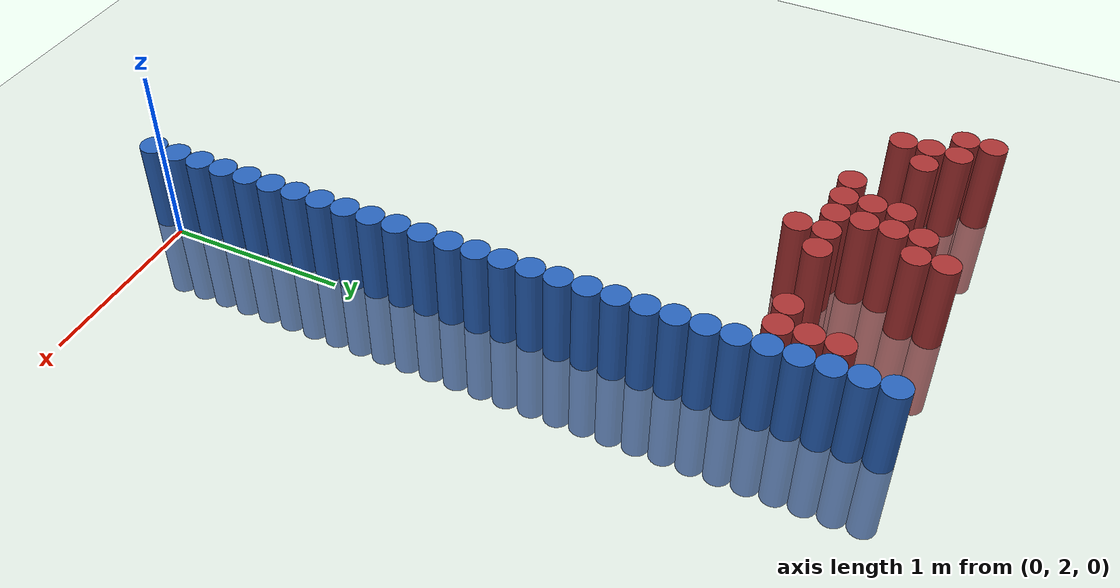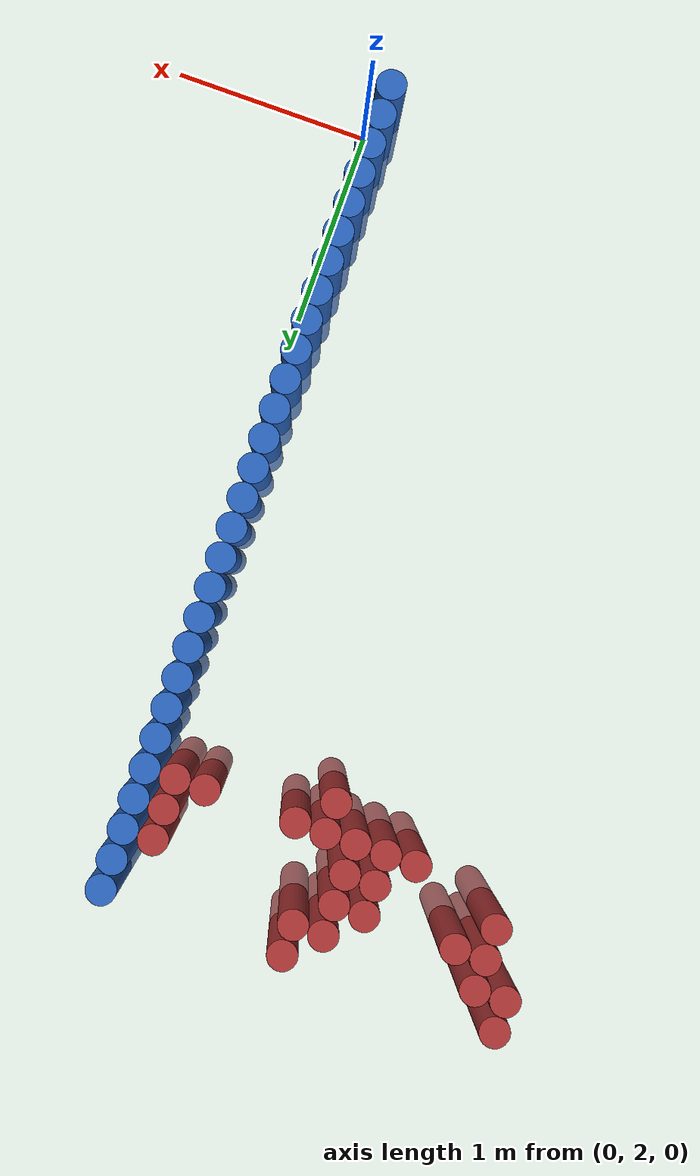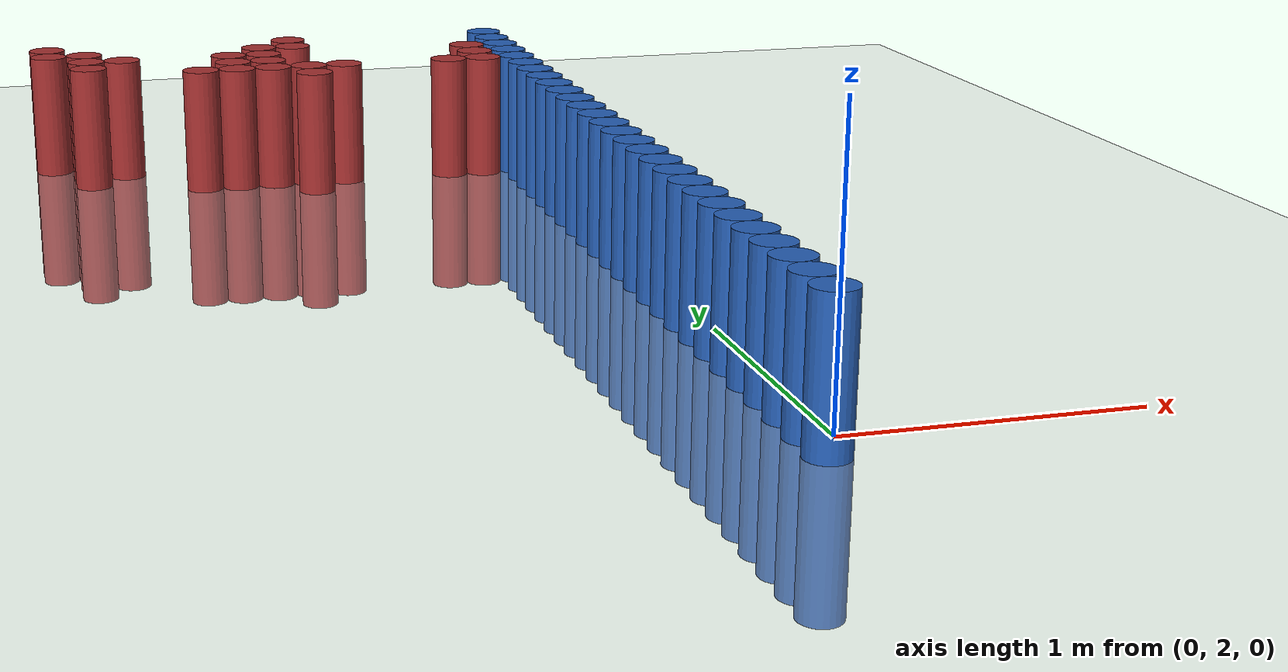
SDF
<sdf version="1.6">
 <world name="default">
  <model name="ground_plane">
   <static>1</static>
   <link name="link">
    <collision name="collision">
     <geometry><plane><normal>0 0 1</normal><size>100 100</size></plane></geometry>
     <surface><friction><ode><mu>100</mu><mu2>50</mu2></ode></friction></surface>
    </collision>
    <visual name="visual">
     <cast_shadows>0</cast_shadows>
     <geometry><plane><normal>0 0 1</normal><size>100 100</size></plane></geometry>
     <material>
      <script><uri>file://media/materials/scripts/gazebo.material</uri><name>Gazebo/Grey</name></script>
     </material>
    </visual>
   </link>
  </model>
  <model name="unit_cylinder_52">
   <static>1</static>
   <pose>-0.075000 1.875000 0.000000 0.000000 0.000000 0.000000</pose>
   <link name="link">
    <inertial>
     <mass>1</mass>
     <inertia><ixx>0.145833</ixx><ixy>0</ixy><ixz>0</ixz><iyy>0.145833</iyy><iyz>0</iyz><izz>0.125</izz></inertia>
    </inertial>
    <collision name="collision">
     <geometry><cylinder><radius>0.075000</radius><length>1</length></cylinder></geometry>
    </collision>
    <visual name="visual">
     <geometry><cylinder><radius>0.075000</radius><length>1</length></cylinder></geometry>
     <material>
      <ambient>0.152000 0.379000 0.720000 1</ambient>
      <diffuse>0.152000 0.379000 0.720000 1</diffuse>
     </material>
     <material>
      <script><name>Gazebo/Grey</name><uri>file://media/materials/scripts/gazebo.material</uri></script>
     </material>
    </visual>
   </link>
  </model>
  <model name="unit_cylinder_54">
   <static>1</static>
   <pose>-0.075000 2.025000 0.000000 0.000000 0.000000 0.000000</pose>
   <link name="link">
    <inertial>
     <mass>1</mass>
     <inertia><ixx>0.145833</ixx><ixy>0</ixy><ixz>0</ixz><iyy>0.145833</iyy><iyz>0</iyz><izz>0.125</izz></inertia>
    </inertial>
    <collision name="collision">
     <geometry><cylinder><radius>0.075000</radius><length>1</length></cylinder></geometry>
    </collision>
    <visual name="visual">
     <geometry><cylinder><radius>0.075000</radius><length>1</length></cylinder></geometry>
     <material>
      <ambient>0.152000 0.379000 0.720000 1</ambient>
      <diffuse>0.152000 0.379000 0.720000 1</diffuse>
     </material>
     <material>
      <script><name>Gazebo/Grey</name><uri>file://media/materials/scripts/gazebo.material</uri></script>
     </material>
    </visual>
   </link>
  </model>
  <model name="unit_cylinder_56">
   <static>1</static>
   <pose>-0.075000 2.175000 0.000000 0.000000 0.000000 0.000000</pose>
   <link name="link">
    <inertial>
     <mass>1</mass>
     <inertia><ixx>0.145833</ixx><ixy>0</ixy><ixz>0</ixz><iyy>0.145833</iyy><iyz>0</iyz><izz>0.125</izz></inertia>
    </inertial>
    <collision name="collision">
     <geometry><cylinder><radius>0.075000</radius><length>1</length></cylinder></geometry>
    </collision>
    <visual name="visual">
     <geometry><cylinder><radius>0.075000</radius><length>1</length></cylinder></geometry>
     <material>
      <ambient>0.152000 0.379000 0.720000 1</ambient>
      <diffuse>0.152000 0.379000 0.720000 1</diffuse>
     </material>
     <material>
      <script><name>Gazebo/Grey</name><uri>file://media/materials/scripts/gazebo.material</uri></script>
     </material>
    </visual>
   </link>
  </model>
  <model name="unit_cylinder_58">
   <static>1</static>
   <pose>-0.075000 2.325000 0.000000 0.000000 0.000000 0.000000</pose>
   <link name="link">
    <inertial>
     <mass>1</mass>
     <inertia><ixx>0.145833</ixx><ixy>0</ixy><ixz>0</ixz><iyy>0.145833</iyy><iyz>0</iyz><izz>0.125</izz></inertia>
    </inertial>
    <collision name="collision">
     <geometry><cylinder><radius>0.075000</radius><length>1</length></cylinder></geometry>
    </collision>
    <visual name="visual">
     <geometry><cylinder><radius>0.075000</radius><length>1</length></cylinder></geometry>
     <material>
      <ambient>0.152000 0.379000 0.720000 1</ambient>
      <diffuse>0.152000 0.379000 0.720000 1</diffuse>
     </material>
     <material>
      <script><name>Gazebo/Grey</name><uri>file://media/materials/scripts/gazebo.material</uri></script>
     </material>
    </visual>
   </link>
  </model>
  <model name="unit_cylinder_60">
   <static>1</static>
   <pose>-0.075000 2.475000 0.000000 0.000000 0.000000 0.000000</pose>
   <link name="link">
    <inertial>
     <mass>1</mass>
     <inertia><ixx>0.145833</ixx><ixy>0</ixy><ixz>0</ixz><iyy>0.145833</iyy><iyz>0</iyz><izz>0.125</izz></inertia>
    </inertial>
    <collision name="collision">
     <geometry><cylinder><radius>0.075000</radius><length>1</length></cylinder></geometry>
    </collision>
    <visual name="visual">
     <geometry><cylinder><radius>0.075000</radius><length>1</length></cylinder></geometry>
     <material>
      <ambient>0.152000 0.379000 0.720000 1</ambient>
      <diffuse>0.152000 0.379000 0.720000 1</diffuse>
     </material>
     <material>
      <script><name>Gazebo/Grey</name><uri>file://media/materials/scripts/gazebo.material</uri></script>
     </material>
    </visual>
   </link>
  </model>
  <model name="unit_cylinder_62">
   <static>1</static>
   <pose>-0.075000 2.625000 0.000000 0.000000 0.000000 0.000000</pose>
   <link name="link">
    <inertial>
     <mass>1</mass>
     <inertia><ixx>0.145833</ixx><ixy>0</ixy><ixz>0</ixz><iyy>0.145833</iyy><iyz>0</iyz><izz>0.125</izz></inertia>
    </inertial>
    <collision name="collision">
     <geometry><cylinder><radius>0.075000</radius><length>1</length></cylinder></geometry>
    </collision>
    <visual name="visual">
     <geometry><cylinder><radius>0.075000</radius><length>1</length></cylinder></geometry>
     <material>
      <ambient>0.152000 0.379000 0.720000 1</ambient>
      <diffuse>0.152000 0.379000 0.720000 1</diffuse>
     </material>
     <material>
      <script><name>Gazebo/Grey</name><uri>file://media/materials/scripts/gazebo.material</uri></script>
     </material>
    </visual>
   </link>
  </model>
  <model name="unit_cylinder_64">
   <static>1</static>
   <pose>-0.075000 2.775000 0.000000 0.000000 0.000000 0.000000</pose>
   <link name="link">
    <inertial>
     <mass>1</mass>
     <inertia><ixx>0.145833</ixx><ixy>0</ixy><ixz>0</ixz><iyy>0.145833</iyy><iyz>0</iyz><izz>0.125</izz></inertia>
    </inertial>
    <collision name="collision">
     <geometry><cylinder><radius>0.075000</radius><length>1</length></cylinder></geometry>
    </collision>
    <visual name="visual">
     <geometry><cylinder><radius>0.075000</radius><length>1</length></cylinder></geometry>
     <material>
      <ambient>0.152000 0.379000 0.720000 1</ambient>
      <diffuse>0.152000 0.379000 0.720000 1</diffuse>
     </material>
     <material>
      <script><name>Gazebo/Grey</name><uri>file://media/materials/scripts/gazebo.material</uri></script>
     </material>
    </visual>
   </link>
  </model>
  <model name="unit_cylinder_66">
   <static>1</static>
   <pose>-0.075000 2.925000 0.000000 0.000000 0.000000 0.000000</pose>
   <link name="link">
    <inertial>
     <mass>1</mass>
     <inertia><ixx>0.145833</ixx><ixy>0</ixy><ixz>0</ixz><iyy>0.145833</iyy><iyz>0</iyz><izz>0.125</izz></inertia>
    </inertial>
    <collision name="collision">
     <geometry><cylinder><radius>0.075000</radius><length>1</length></cylinder></geometry>
    </collision>
    <visual name="visual">
     <geometry><cylinder><radius>0.075000</radius><length>1</length></cylinder></geometry>
     <material>
      <ambient>0.152000 0.379000 0.720000 1</ambient>
      <diffuse>0.152000 0.379000 0.720000 1</diffuse>
     </material>
     <material>
      <script><name>Gazebo/Grey</name><uri>file://media/materials/scripts/gazebo.material</uri></script>
     </material>
    </visual>
   </link>
  </model>
  <model name="unit_cylinder_68">
   <static>1</static>
   <pose>-0.075000 3.075000 0.000000 0.000000 0.000000 0.000000</pose>
   <link name="link">
    <inertial>
     <mass>1</mass>
     <inertia><ixx>0.145833</ixx><ixy>0</ixy><ixz>0</ixz><iyy>0.145833</iyy><iyz>0</iyz><izz>0.125</izz></inertia>
    </inertial>
    <collision name="collision">
     <geometry><cylinder><radius>0.075000</radius><length>1</length></cylinder></geometry>
    </collision>
    <visual name="visual">
     <geometry><cylinder><radius>0.075000</radius><length>1</length></cylinder></geometry>
     <material>
      <ambient>0.152000 0.379000 0.720000 1</ambient>
      <diffuse>0.152000 0.379000 0.720000 1</diffuse>
     </material>
     <material>
      <script><name>Gazebo/Grey</name><uri>file://media/materials/scripts/gazebo.material</uri></script>
     </material>
    </visual>
   </link>
  </model>
  <model name="unit_cylinder_70">
   <static>1</static>
   <pose>-0.075000 3.225000 0.000000 0.000000 0.000000 0.000000</pose>
   <link name="link">
    <inertial>
     <mass>1</mass>
     <inertia><ixx>0.145833</ixx><ixy>0</ixy><ixz>0</ixz><iyy>0.145833</iyy><iyz>0</iyz><izz>0.125</izz></inertia>
    </inertial>
    <collision name="collision">
     <geometry><cylinder><radius>0.075000</radius><length>1</length></cylinder></geometry>
    </collision>
    <visual name="visual">
     <geometry><cylinder><radius>0.075000</radius><length>1</length></cylinder></geometry>
     <material>
      <ambient>0.152000 0.379000 0.720000 1</ambient>
      <diffuse>0.152000 0.379000 0.720000 1</diffuse>
     </material>
     <material>
      <script><name>Gazebo/Grey</name><uri>file://media/materials/scripts/gazebo.material</uri></script>
     </material>
    </visual>
   </link>
  </model>
  <model name="unit_cylinder_72">
   <static>1</static>
   <pose>-0.075000 3.375000 0.000000 0.000000 0.000000 0.000000</pose>
   <link name="link">
    <inertial>
     <mass>1</mass>
     <inertia><ixx>0.145833</ixx><ixy>0</ixy><ixz>0</ixz><iyy>0.145833</iyy><iyz>0</iyz><izz>0.125</izz></inertia>
    </inertial>
    <collision name="collision">
     <geometry><cylinder><radius>0.075000</radius><length>1</length></cylinder></geometry>
    </collision>
    <visual name="visual">
     <geometry><cylinder><radius>0.075000</radius><length>1</length></cylinder></geometry>
     <material>
      <ambient>0.152000 0.379000 0.720000 1</ambient>
      <diffuse>0.152000 0.379000 0.720000 1</diffuse>
     </material>
     <material>
      <script><name>Gazebo/Grey</name><uri>file://media/materials/scripts/gazebo.material</uri></script>
     </material>
    </visual>
   </link>
  </model>
  <model name="unit_cylinder_74">
   <static>1</static>
   <pose>-0.075000 3.525000 0.000000 0.000000 0.000000 0.000000</pose>
   <link name="link">
    <inertial>
     <mass>1</mass>
     <inertia><ixx>0.145833</ixx><ixy>0</ixy><ixz>0</ixz><iyy>0.145833</iyy><iyz>0</iyz><izz>0.125</izz></inertia>
    </inertial>
    <collision name="collision">
     <geometry><cylinder><radius>0.075000</radius><length>1</length></cylinder></geometry>
    </collision>
    <visual name="visual">
     <geometry><cylinder><radius>0.075000</radius><length>1</length></cylinder></geometry>
     <material>
      <ambient>0.152000 0.379000 0.720000 1</ambient>
      <diffuse>0.152000 0.379000 0.720000 1</diffuse>
     </material>
     <material>
      <script><name>Gazebo/Grey</name><uri>file://media/materials/scripts/gazebo.material</uri></script>
     </material>
    </visual>
   </link>
  </model>
  <model name="unit_cylinder_76">
   <static>1</static>
   <pose>-0.075000 3.675000 0.000000 0.000000 0.000000 0.000000</pose>
   <link name="link">
    <inertial>
     <mass>1</mass>
     <inertia><ixx>0.145833</ixx><ixy>0</ixy><ixz>0</ixz><iyy>0.145833</iyy><iyz>0</iyz><izz>0.125</izz></inertia>
    </inertial>
    <collision name="collision">
     <geometry><cylinder><radius>0.075000</radius><length>1</length></cylinder></geometry>
    </collision>
    <visual name="visual">
     <geometry><cylinder><radius>0.075000</radius><length>1</length></cylinder></geometry>
     <material>
      <ambient>0.152000 0.379000 0.720000 1</ambient>
      <diffuse>0.152000 0.379000 0.720000 1</diffuse>
     </material>
     <material>
      <script><name>Gazebo/Grey</name><uri>file://media/materials/scripts/gazebo.material</uri></script>
     </material>
    </visual>
   </link>
  </model>
  <model name="unit_cylinder_78">
   <static>1</static>
   <pose>-0.075000 3.825000 0.000000 0.000000 0.000000 0.000000</pose>
   <link name="link">
    <inertial>
     <mass>1</mass>
     <inertia><ixx>0.145833</ixx><ixy>0</ixy><ixz>0</ixz><iyy>0.145833</iyy><iyz>0</iyz><izz>0.125</izz></inertia>
    </inertial>
    <collision name="collision">
     <geometry><cylinder><radius>0.075000</radius><length>1</length></cylinder></geometry>
    </collision>
    <visual name="visual">
     <geometry><cylinder><radius>0.075000</radius><length>1</length></cylinder></geometry>
     <material>
      <ambient>0.152000 0.379000 0.720000 1</ambient>
      <diffuse>0.152000 0.379000 0.720000 1</diffuse>
     </material>
     <material>
      <script><name>Gazebo/Grey</name><uri>file://media/materials/scripts/gazebo.material</uri></script>
     </material>
    </visual>
   </link>
  </model>
  <model name="unit_cylinder_80">
   <static>1</static>
   <pose>-0.075000 3.975000 0.000000 0.000000 0.000000 0.000000</pose>
   <link name="link">
    <inertial>
     <mass>1</mass>
     <inertia><ixx>0.145833</ixx><ixy>0</ixy><ixz>0</ixz><iyy>0.145833</iyy><iyz>0</iyz><izz>0.125</izz></inertia>
    </inertial>
    <collision name="collision">
     <geometry><cylinder><radius>0.075000</radius><length>1</length></cylinder></geometry>
    </collision>
    <visual name="visual">
     <geometry><cylinder><radius>0.075000</radius><length>1</length></cylinder></geometry>
     <material>
      <ambient>0.152000 0.379000 0.720000 1</ambient>
      <diffuse>0.152000 0.379000 0.720000 1</diffuse>
     </material>
     <material>
      <script><name>Gazebo/Grey</name><uri>file://media/materials/scripts/gazebo.material</uri></script>
     </material>
    </visual>
   </link>
  </model>
  <model name="unit_cylinder_82">
   <static>1</static>
   <pose>-0.075000 4.125000 0.000000 0.000000 0.000000 0.000000</pose>
   <link name="link">
    <inertial>
     <mass>1</mass>
     <inertia><ixx>0.145833</ixx><ixy>0</ixy><ixz>0</ixz><iyy>0.145833</iyy><iyz>0</iyz><izz>0.125</izz></inertia>
    </inertial>
    <collision name="collision">
     <geometry><cylinder><radius>0.075000</radius><length>1</length></cylinder></geometry>
    </collision>
    <visual name="visual">
     <geometry><cylinder><radius>0.075000</radius><length>1</length></cylinder></geometry>
     <material>
      <ambient>0.152000 0.379000 0.720000 1</ambient>
      <diffuse>0.152000 0.379000 0.720000 1</diffuse>
     </material>
     <material>
      <script><name>Gazebo/Grey</name><uri>file://media/materials/scripts/gazebo.material</uri></script>
     </material>
    </visual>
   </link>
  </model>
  <model name="unit_cylinder_84">
   <static>1</static>
   <pose>-0.075000 4.275000 0.000000 0.000000 0.000000 0.000000</pose>
   <link name="link">
    <inertial>
     <mass>1</mass>
     <inertia><ixx>0.145833</ixx><ixy>0</ixy><ixz>0</ixz><iyy>0.145833</iyy><iyz>0</iyz><izz>0.125</izz></inertia>
    </inertial>
    <collision name="collision">
     <geometry><cylinder><radius>0.075000</radius><length>1</length></cylinder></geometry>
    </collision>
    <visual name="visual">
     <geometry><cylinder><radius>0.075000</radius><length>1</length></cylinder></geometry>
     <material>
      <ambient>0.152000 0.379000 0.720000 1</ambient>
      <diffuse>0.152000 0.379000 0.720000 1</diffuse>
     </material>
     <material>
      <script><name>Gazebo/Grey</name><uri>file://media/materials/scripts/gazebo.material</uri></script>
     </material>
    </visual>
   </link>
  </model>
  <model name="unit_cylinder_86">
   <static>1</static>
   <pose>-0.075000 4.425000 0.000000 0.000000 0.000000 0.000000</pose>
   <link name="link">
    <inertial>
     <mass>1</mass>
     <inertia><ixx>0.145833</ixx><ixy>0</ixy><ixz>0</ixz><iyy>0.145833</iyy><iyz>0</iyz><izz>0.125</izz></inertia>
    </inertial>
    <collision name="collision">
     <geometry><cylinder><radius>0.075000</radius><length>1</length></cylinder></geometry>
    </collision>
    <visual name="visual">
     <geometry><cylinder><radius>0.075000</radius><length>1</length></cylinder></geometry>
     <material>
      <ambient>0.152000 0.379000 0.720000 1</ambient>
      <diffuse>0.152000 0.379000 0.720000 1</diffuse>
     </material>
     <material>
      <script><name>Gazebo/Grey</name><uri>file://media/materials/scripts/gazebo.material</uri></script>
     </material>
    </visual>
   </link>
  </model>
  <model name="unit_cylinder_88">
   <static>1</static>
   <pose>-0.075000 4.575000 0.000000 0.000000 0.000000 0.000000</pose>
   <link name="link">
    <inertial>
     <mass>1</mass>
     <inertia><ixx>0.145833</ixx><ixy>0</ixy><ixz>0</ixz><iyy>0.145833</iyy><iyz>0</iyz><izz>0.125</izz></inertia>
    </inertial>
    <collision name="collision">
     <geometry><cylinder><radius>0.075000</radius><length>1</length></cylinder></geometry>
    </collision>
    <visual name="visual">
     <geometry><cylinder><radius>0.075000</radius><length>1</length></cylinder></geometry>
     <material>
      <ambient>0.152000 0.379000 0.720000 1</ambient>
      <diffuse>0.152000 0.379000 0.720000 1</diffuse>
     </material>
     <material>
      <script><name>Gazebo/Grey</name><uri>file://media/materials/scripts/gazebo.material</uri></script>
     </material>
    </visual>
   </link>
  </model>
  <model name="unit_cylinder_90">
   <static>1</static>
   <pose>-0.075000 4.725000 0.000000 0.000000 0.000000 0.000000</pose>
   <link name="link">
    <inertial>
     <mass>1</mass>
     <inertia><ixx>0.145833</ixx><ixy>0</ixy><ixz>0</ixz><iyy>0.145833</iyy><iyz>0</iyz><izz>0.125</izz></inertia>
    </inertial>
    <collision name="collision">
     <geometry><cylinder><radius>0.075000</radius><length>1</length></cylinder></geometry>
    </collision>
    <visual name="visual">
     <geometry><cylinder><radius>0.075000</radius><length>1</length></cylinder></geometry>
     <material>
      <ambient>0.152000 0.379000 0.720000 1</ambient>
      <diffuse>0.152000 0.379000 0.720000 1</diffuse>
     </material>
     <material>
      <script><name>Gazebo/Grey</name><uri>file://media/materials/scripts/gazebo.material</uri></script>
     </material>
    </visual>
   </link>
  </model>
  <model name="unit_cylinder_92">
   <static>1</static>
   <pose>-0.075000 4.875000 0.000000 0.000000 0.000000 0.000000</pose>
   <link name="link">
    <inertial>
     <mass>1</mass>
     <inertia><ixx>0.145833</ixx><ixy>0</ixy><ixz>0</ixz><iyy>0.145833</iyy><iyz>0</iyz><izz>0.125</izz></inertia>
    </inertial>
    <collision name="collision">
     <geometry><cylinder><radius>0.075000</radius><length>1</length></cylinder></geometry>
    </collision>
    <visual name="visual">
     <geometry><cylinder><radius>0.075000</radius><length>1</length></cylinder></geometry>
     <material>
      <ambient>0.152000 0.379000 0.720000 1</ambient>
      <diffuse>0.152000 0.379000 0.720000 1</diffuse>
     </material>
     <material>
      <script><name>Gazebo/Grey</name><uri>file://media/materials/scripts/gazebo.material</uri></script>
     </material>
    </visual>
   </link>
  </model>
  <model name="unit_cylinder_94">
   <static>1</static>
   <pose>-0.075000 5.025000 0.000000 0.000000 0.000000 0.000000</pose>
   <link name="link">
    <inertial>
     <mass>1</mass>
     <inertia><ixx>0.145833</ixx><ixy>0</ixy><ixz>0</ixz><iyy>0.145833</iyy><iyz>0</iyz><izz>0.125</izz></inertia>
    </inertial>
    <collision name="collision">
     <geometry><cylinder><radius>0.075000</radius><length>1</length></cylinder></geometry>
    </collision>
    <visual name="visual">
     <geometry><cylinder><radius>0.075000</radius><length>1</length></cylinder></geometry>
     <material>
      <ambient>0.152000 0.379000 0.720000 1</ambient>
      <diffuse>0.152000 0.379000 0.720000 1</diffuse>
     </material>
     <material>
      <script><name>Gazebo/Grey</name><uri>file://media/materials/scripts/gazebo.material</uri></script>
     </material>
    </visual>
   </link>
  </model>
  <model name="unit_cylinder_207">
   <static>1</static>
   <pose>-2.025000 5.775000 0.000000 0.000000 0.000000 0.000000</pose>
   <link name="link">
    <inertial>
     <mass>1</mass>
     <inertia><ixx>0.145833</ixx><ixy>0</ixy><ixz>0</ixz><iyy>0.145833</iyy><iyz>0</iyz><izz>0.125</izz></inertia>
    </inertial>
    <collision name="collision">
     <geometry><cylinder><radius>0.075000</radius><length>1</length></cylinder></geometry>
    </collision>
    <visual name="visual">
     <geometry><cylinder><radius>0.075000</radius><length>1</length></cylinder></geometry>
     <material>
      <ambient>0.648000 0.192000 0.192000 1</ambient>
      <diffuse>0.648000 0.192000 0.192000 1</diffuse>
     </material>
     <material>
      <script><name>Gazebo/Grey</name><uri>file://media/materials/scripts/gazebo.material</uri></script>
     </material>
    </visual>
   </link>
  </model>
  <model name="unit_cylinder_208">
   <static>1</static>
   <pose>-2.025000 5.925000 0.000000 0.000000 0.000000 0.000000</pose>
   <link name="link">
    <inertial>
     <mass>1</mass>
     <inertia><ixx>0.145833</ixx><ixy>0</ixy><ixz>0</ixz><iyy>0.145833</iyy><iyz>0</iyz><izz>0.125</izz></inertia>
    </inertial>
    <collision name="collision">
     <geometry><cylinder><radius>0.075000</radius><length>1</length></cylinder></geometry>
    </collision>
    <visual name="visual">
     <geometry><cylinder><radius>0.075000</radius><length>1</length></cylinder></geometry>
     <material>
      <ambient>0.648000 0.192000 0.192000 1</ambient>
      <diffuse>0.648000 0.192000 0.192000 1</diffuse>
     </material>
     <material>
      <script><name>Gazebo/Grey</name><uri>file://media/materials/scripts/gazebo.material</uri></script>
     </material>
    </visual>
   </link>
  </model>
  <model name="unit_cylinder_217">
   <static>1</static>
   <pose>-1.875000 5.475000 0.000000 0.000000 0.000000 0.000000</pose>
   <link name="link">
    <inertial>
     <mass>1</mass>
     <inertia><ixx>0.145833</ixx><ixy>0</ixy><ixz>0</ixz><iyy>0.145833</iyy><iyz>0</iyz><izz>0.125</izz></inertia>
    </inertial>
    <collision name="collision">
     <geometry><cylinder><radius>0.075000</radius><length>1</length></cylinder></geometry>
    </collision>
    <visual name="visual">
     <geometry><cylinder><radius>0.075000</radius><length>1</length></cylinder></geometry>
     <material>
      <ambient>0.648000 0.192000 0.192000 1</ambient>
      <diffuse>0.648000 0.192000 0.192000 1</diffuse>
     </material>
     <material>
      <script><name>Gazebo/Grey</name><uri>file://media/materials/scripts/gazebo.material</uri></script>
     </material>
    </visual>
   </link>
  </model>
  <model name="unit_cylinder_218">
   <static>1</static>
   <pose>-1.875000 5.625000 0.000000 0.000000 0.000000 0.000000</pose>
   <link name="link">
    <inertial>
     <mass>1</mass>
     <inertia><ixx>0.145833</ixx><ixy>0</ixy><ixz>0</ixz><iyy>0.145833</iyy><iyz>0</iyz><izz>0.125</izz></inertia>
    </inertial>
    <collision name="collision">
     <geometry><cylinder><radius>0.075000</radius><length>1</length></cylinder></geometry>
    </collision>
    <visual name="visual">
     <geometry><cylinder><radius>0.075000</radius><length>1</length></cylinder></geometry>
     <material>
      <ambient>0.648000 0.192000 0.192000 1</ambient>
      <diffuse>0.648000 0.192000 0.192000 1</diffuse>
     </material>
     <material>
      <script><name>Gazebo/Grey</name><uri>file://media/materials/scripts/gazebo.material</uri></script>
     </material>
    </visual>
   </link>
  </model>
  <model name="unit_cylinder_219">
   <static>1</static>
   <pose>-1.875000 5.775000 0.000000 0.000000 0.000000 0.000000</pose>
   <link name="link">
    <inertial>
     <mass>1</mass>
     <inertia><ixx>0.145833</ixx><ixy>0</ixy><ixz>0</ixz><iyy>0.145833</iyy><iyz>0</iyz><izz>0.125</izz></inertia>
    </inertial>
    <collision name="collision">
     <geometry><cylinder><radius>0.075000</radius><length>1</length></cylinder></geometry>
    </collision>
    <visual name="visual">
     <geometry><cylinder><radius>0.075000</radius><length>1</length></cylinder></geometry>
     <material>
      <ambient>0.648000 0.192000 0.192000 1</ambient>
      <diffuse>0.648000 0.192000 0.192000 1</diffuse>
     </material>
     <material>
      <script><name>Gazebo/Grey</name><uri>file://media/materials/scripts/gazebo.material</uri></script>
     </material>
    </visual>
   </link>
  </model>
  <model name="unit_cylinder_224">
   <static>1</static>
   <pose>-1.725000 5.625000 0.000000 0.000000 0.000000 0.000000</pose>
   <link name="link">
    <inertial>
     <mass>1</mass>
     <inertia><ixx>0.145833</ixx><ixy>0</ixy><ixz>0</ixz><iyy>0.145833</iyy><iyz>0</iyz><izz>0.125</izz></inertia>
    </inertial>
    <collision name="collision">
     <geometry><cylinder><radius>0.075000</radius><length>1</length></cylinder></geometry>
    </collision>
    <visual name="visual">
     <geometry><cylinder><radius>0.075000</radius><length>1</length></cylinder></geometry>
     <material>
      <ambient>0.648000 0.192000 0.192000 1</ambient>
      <diffuse>0.648000 0.192000 0.192000 1</diffuse>
     </material>
     <material>
      <script><name>Gazebo/Grey</name><uri>file://media/materials/scripts/gazebo.material</uri></script>
     </material>
    </visual>
   </link>
  </model>
  <model name="unit_cylinder_235">
   <static>1</static>
   <pose>-1.425000 5.325000 0.000000 0.000000 0.000000 0.000000</pose>
   <link name="link">
    <inertial>
     <mass>1</mass>
     <inertia><ixx>0.145833</ixx><ixy>0</ixy><ixz>0</ixz><iyy>0.145833</iyy><iyz>0</iyz><izz>0.125</izz></inertia>
    </inertial>
    <collision name="collision">
     <geometry><cylinder><radius>0.075000</radius><length>1</length></cylinder></geometry>
    </collision>
    <visual name="visual">
     <geometry><cylinder><radius>0.075000</radius><length>1</length></cylinder></geometry>
     <material>
      <ambient>0.648000 0.192000 0.192000 1</ambient>
      <diffuse>0.648000 0.192000 0.192000 1</diffuse>
     </material>
     <material>
      <script><name>Gazebo/Grey</name><uri>file://media/materials/scripts/gazebo.material</uri></script>
     </material>
    </visual>
   </link>
  </model>
  <model name="unit_cylinder_242">
   <static>1</static>
   <pose>-1.275000 5.325000 0.000000 0.000000 0.000000 0.000000</pose>
   <link name="link">
    <inertial>
     <mass>1</mass>
     <inertia><ixx>0.145833</ixx><ixy>0</ixy><ixz>0</ixz><iyy>0.145833</iyy><iyz>0</iyz><izz>0.125</izz></inertia>
    </inertial>
    <collision name="collision">
     <geometry><cylinder><radius>0.075000</radius><length>1</length></cylinder></geometry>
    </collision>
    <visual name="visual">
     <geometry><cylinder><radius>0.075000</radius><length>1</length></cylinder></geometry>
     <material>
      <ambient>0.648000 0.192000 0.192000 1</ambient>
      <diffuse>0.648000 0.192000 0.192000 1</diffuse>
     </material>
     <material>
      <script><name>Gazebo/Grey</name><uri>file://media/materials/scripts/gazebo.material</uri></script>
     </material>
    </visual>
   </link>
  </model>
  <model name="unit_cylinder_243">
   <static>1</static>
   <pose>-1.275000 5.475000 0.000000 0.000000 0.000000 0.000000</pose>
   <link name="link">
    <inertial>
     <mass>1</mass>
     <inertia><ixx>0.145833</ixx><ixy>0</ixy><ixz>0</ixz><iyy>0.145833</iyy><iyz>0</iyz><izz>0.125</izz></inertia>
    </inertial>
    <collision name="collision">
     <geometry><cylinder><radius>0.075000</radius><length>1</length></cylinder></geometry>
    </collision>
    <visual name="visual">
     <geometry><cylinder><radius>0.075000</radius><length>1</length></cylinder></geometry>
     <material>
      <ambient>0.648000 0.192000 0.192000 1</ambient>
      <diffuse>0.648000 0.192000 0.192000 1</diffuse>
     </material>
     <material>
      <script><name>Gazebo/Grey</name><uri>file://media/materials/scripts/gazebo.material</uri></script>
     </material>
    </visual>
   </link>
  </model>
  <model name="unit_cylinder_244">
   <static>1</static>
   <pose>-1.275000 5.625000 0.000000 0.000000 0.000000 0.000000</pose>
   <link name="link">
    <inertial>
     <mass>1</mass>
     <inertia><ixx>0.145833</ixx><ixy>0</ixy><ixz>0</ixz><iyy>0.145833</iyy><iyz>0</iyz><izz>0.125</izz></inertia>
    </inertial>
    <collision name="collision">
     <geometry><cylinder><radius>0.075000</radius><length>1</length></cylinder></geometry>
    </collision>
    <visual name="visual">
     <geometry><cylinder><radius>0.075000</radius><length>1</length></cylinder></geometry>
     <material>
      <ambient>0.648000 0.192000 0.192000 1</ambient>
      <diffuse>0.648000 0.192000 0.192000 1</diffuse>
     </material>
     <material>
      <script><name>Gazebo/Grey</name><uri>file://media/materials/scripts/gazebo.material</uri></script>
     </material>
    </visual>
   </link>
  </model>
  <model name="unit_cylinder_253">
   <static>1</static>
   <pose>-1.125000 5.325000 0.000000 0.000000 0.000000 0.000000</pose>
   <link name="link">
    <inertial>
     <mass>1</mass>
     <inertia><ixx>0.145833</ixx><ixy>0</ixy><ixz>0</ixz><iyy>0.145833</iyy><iyz>0</iyz><izz>0.125</izz></inertia>
    </inertial>
    <collision name="collision">
     <geometry><cylinder><radius>0.075000</radius><length>1</length></cylinder></geometry>
    </collision>
    <visual name="visual">
     <geometry><cylinder><radius>0.075000</radius><length>1</length></cylinder></geometry>
     <material>
      <ambient>0.648000 0.192000 0.192000 1</ambient>
      <diffuse>0.648000 0.192000 0.192000 1</diffuse>
     </material>
     <material>
      <script><name>Gazebo/Grey</name><uri>file://media/materials/scripts/gazebo.material</uri></script>
     </material>
    </visual>
   </link>
  </model>
  <model name="unit_cylinder_254">
   <static>1</static>
   <pose>-1.125000 5.475000 0.000000 0.000000 0.000000 0.000000</pose>
   <link name="link">
    <inertial>
     <mass>1</mass>
     <inertia><ixx>0.145833</ixx><ixy>0</ixy><ixz>0</ixz><iyy>0.145833</iyy><iyz>0</iyz><izz>0.125</izz></inertia>
    </inertial>
    <collision name="collision">
     <geometry><cylinder><radius>0.075000</radius><length>1</length></cylinder></geometry>
    </collision>
    <visual name="visual">
     <geometry><cylinder><radius>0.075000</radius><length>1</length></cylinder></geometry>
     <material>
      <ambient>0.648000 0.192000 0.192000 1</ambient>
      <diffuse>0.648000 0.192000 0.192000 1</diffuse>
     </material>
     <material>
      <script><name>Gazebo/Grey</name><uri>file://media/materials/scripts/gazebo.material</uri></script>
     </material>
    </visual>
   </link>
  </model>
  <model name="unit_cylinder_255">
   <static>1</static>
   <pose>-1.125000 5.625000 0.000000 0.000000 0.000000 0.000000</pose>
   <link name="link">
    <inertial>
     <mass>1</mass>
     <inertia><ixx>0.145833</ixx><ixy>0</ixy><ixz>0</ixz><iyy>0.145833</iyy><iyz>0</iyz><izz>0.125</izz></inertia>
    </inertial>
    <collision name="collision">
     <geometry><cylinder><radius>0.075000</radius><length>1</length></cylinder></geometry>
    </collision>
    <visual name="visual">
     <geometry><cylinder><radius>0.075000</radius><length>1</length></cylinder></geometry>
     <material>
      <ambient>0.648000 0.192000 0.192000 1</ambient>
      <diffuse>0.648000 0.192000 0.192000 1</diffuse>
     </material>
     <material>
      <script><name>Gazebo/Grey</name><uri>file://media/materials/scripts/gazebo.material</uri></script>
     </material>
    </visual>
   </link>
  </model>
  <model name="unit_cylinder_256">
   <static>1</static>
   <pose>-1.125000 5.775000 0.000000 0.000000 0.000000 0.000000</pose>
   <link name="link">
    <inertial>
     <mass>1</mass>
     <inertia><ixx>0.145833</ixx><ixy>0</ixy><ixz>0</ixz><iyy>0.145833</iyy><iyz>0</iyz><izz>0.125</izz></inertia>
    </inertial>
    <collision name="collision">
     <geometry><cylinder><radius>0.075000</radius><length>1</length></cylinder></geometry>
    </collision>
    <visual name="visual">
     <geometry><cylinder><radius>0.075000</radius><length>1</length></cylinder></geometry>
     <material>
      <ambient>0.648000 0.192000 0.192000 1</ambient>
      <diffuse>0.648000 0.192000 0.192000 1</diffuse>
     </material>
     <material>
      <script><name>Gazebo/Grey</name><uri>file://media/materials/scripts/gazebo.material</uri></script>
     </material>
    </visual>
   </link>
  </model>
  <model name="unit_cylinder_271">
   <static>1</static>
   <pose>-0.975000 5.175000 0.000000 0.000000 0.000000 0.000000</pose>
   <link name="link">
    <inertial>
     <mass>1</mass>
     <inertia><ixx>0.145833</ixx><ixy>0</ixy><ixz>0</ixz><iyy>0.145833</iyy><iyz>0</iyz><izz>0.125</izz></inertia>
    </inertial>
    <collision name="collision">
     <geometry><cylinder><radius>0.075000</radius><length>1</length></cylinder></geometry>
    </collision>
    <visual name="visual">
     <geometry><cylinder><radius>0.075000</radius><length>1</length></cylinder></geometry>
     <material>
      <ambient>0.648000 0.192000 0.192000 1</ambient>
      <diffuse>0.648000 0.192000 0.192000 1</diffuse>
     </material>
     <material>
      <script><name>Gazebo/Grey</name><uri>file://media/materials/scripts/gazebo.material</uri></script>
     </material>
    </visual>
   </link>
  </model>
  <model name="unit_cylinder_272">
   <static>1</static>
   <pose>-0.975000 5.325000 0.000000 0.000000 0.000000 0.000000</pose>
   <link name="link">
    <inertial>
     <mass>1</mass>
     <inertia><ixx>0.145833</ixx><ixy>0</ixy><ixz>0</ixz><iyy>0.145833</iyy><iyz>0</iyz><izz>0.125</izz></inertia>
    </inertial>
    <collision name="collision">
     <geometry><cylinder><radius>0.075000</radius><length>1</length></cylinder></geometry>
    </collision>
    <visual name="visual">
     <geometry><cylinder><radius>0.075000</radius><length>1</length></cylinder></geometry>
     <material>
      <ambient>0.648000 0.192000 0.192000 1</ambient>
      <diffuse>0.648000 0.192000 0.192000 1</diffuse>
     </material>
     <material>
      <script><name>Gazebo/Grey</name><uri>file://media/materials/scripts/gazebo.material</uri></script>
     </material>
    </visual>
   </link>
  </model>
  <model name="unit_cylinder_273">
   <static>1</static>
   <pose>-0.975000 5.775000 0.000000 0.000000 0.000000 0.000000</pose>
   <link name="link">
    <inertial>
     <mass>1</mass>
     <inertia><ixx>0.145833</ixx><ixy>0</ixy><ixz>0</ixz><iyy>0.145833</iyy><iyz>0</iyz><izz>0.125</izz></inertia>
    </inertial>
    <collision name="collision">
     <geometry><cylinder><radius>0.075000</radius><length>1</length></cylinder></geometry>
    </collision>
    <visual name="visual">
     <geometry><cylinder><radius>0.075000</radius><length>1</length></cylinder></geometry>
     <material>
      <ambient>0.648000 0.192000 0.192000 1</ambient>
      <diffuse>0.648000 0.192000 0.192000 1</diffuse>
     </material>
     <material>
      <script><name>Gazebo/Grey</name><uri>file://media/materials/scripts/gazebo.material</uri></script>
     </material>
    </visual>
   </link>
  </model>
  <model name="unit_cylinder_274">
   <static>1</static>
   <pose>-0.975000 5.925000 0.000000 0.000000 0.000000 0.000000</pose>
   <link name="link">
    <inertial>
     <mass>1</mass>
     <inertia><ixx>0.145833</ixx><ixy>0</ixy><ixz>0</ixz><iyy>0.145833</iyy><iyz>0</iyz><izz>0.125</izz></inertia>
    </inertial>
    <collision name="collision">
     <geometry><cylinder><radius>0.075000</radius><length>1</length></cylinder></geometry>
    </collision>
    <visual name="visual">
     <geometry><cylinder><radius>0.075000</radius><length>1</length></cylinder></geometry>
     <material>
      <ambient>0.648000 0.192000 0.192000 1</ambient>
      <diffuse>0.648000 0.192000 0.192000 1</diffuse>
     </material>
     <material>
      <script><name>Gazebo/Grey</name><uri>file://media/materials/scripts/gazebo.material</uri></script>
     </material>
    </visual>
   </link>
  </model>
  <model name="unit_cylinder_287">
   <static>1</static>
   <pose>-0.825000 5.325000 0.000000 0.000000 0.000000 0.000000</pose>
   <link name="link">
    <inertial>
     <mass>1</mass>
     <inertia><ixx>0.145833</ixx><ixy>0</ixy><ixz>0</ixz><iyy>0.145833</iyy><iyz>0</iyz><izz>0.125</izz></inertia>
    </inertial>
    <collision name="collision">
     <geometry><cylinder><radius>0.075000</radius><length>1</length></cylinder></geometry>
    </collision>
    <visual name="visual">
     <geometry><cylinder><radius>0.075000</radius><length>1</length></cylinder></geometry>
     <material>
      <ambient>0.648000 0.192000 0.192000 1</ambient>
      <diffuse>0.648000 0.192000 0.192000 1</diffuse>
     </material>
     <material>
      <script><name>Gazebo/Grey</name><uri>file://media/materials/scripts/gazebo.material</uri></script>
     </material>
    </visual>
   </link>
  </model>
  <model name="unit_cylinder_303">
   <static>1</static>
   <pose>-0.375000 5.325000 0.000000 0.000000 0.000000 0.000000</pose>
   <link name="link">
    <inertial>
     <mass>1</mass>
     <inertia><ixx>0.145833</ixx><ixy>0</ixy><ixz>0</ixz><iyy>0.145833</iyy><iyz>0</iyz><izz>0.125</izz></inertia>
    </inertial>
    <collision name="collision">
     <geometry><cylinder><radius>0.075000</radius><length>1</length></cylinder></geometry>
    </collision>
    <visual name="visual">
     <geometry><cylinder><radius>0.075000</radius><length>1</length></cylinder></geometry>
     <material>
      <ambient>0.648000 0.192000 0.192000 1</ambient>
      <diffuse>0.648000 0.192000 0.192000 1</diffuse>
     </material>
     <material>
      <script><name>Gazebo/Grey</name><uri>file://media/materials/scripts/gazebo.material</uri></script>
     </material>
    </visual>
   </link>
  </model>
  <model name="unit_cylinder_314">
   <static>1</static>
   <pose>-0.225000 5.325000 0.000000 0.000000 0.000000 0.000000</pose>
   <link name="link">
    <inertial>
     <mass>1</mass>
     <inertia><ixx>0.145833</ixx><ixy>0</ixy><ixz>0</ixz><iyy>0.145833</iyy><iyz>0</iyz><izz>0.125</izz></inertia>
    </inertial>
    <collision name="collision">
     <geometry><cylinder><radius>0.075000</radius><length>1</length></cylinder></geometry>
    </collision>
    <visual name="visual">
     <geometry><cylinder><radius>0.075000</radius><length>1</length></cylinder></geometry>
     <material>
      <ambient>0.648000 0.192000 0.192000 1</ambient>
      <diffuse>0.648000 0.192000 0.192000 1</diffuse>
     </material>
     <material>
      <script><name>Gazebo/Grey</name><uri>file://media/materials/scripts/gazebo.material</uri></script>
     </material>
    </visual>
   </link>
  </model>
  <model name="unit_cylinder_315">
   <static>1</static>
   <pose>-0.225000 5.475000 0.000000 0.000000 0.000000 0.000000</pose>
   <link name="link">
    <inertial>
     <mass>1</mass>
     <inertia><ixx>0.145833</ixx><ixy>0</ixy><ixz>0</ixz><iyy>0.145833</iyy><iyz>0</iyz><izz>0.125</izz></inertia>
    </inertial>
    <collision name="collision">
     <geometry><cylinder><radius>0.075000</radius><length>1</length></cylinder></geometry>
    </collision>
    <visual name="visual">
     <geometry><cylinder><radius>0.075000</radius><length>1</length></cylinder></geometry>
     <material>
      <ambient>0.648000 0.192000 0.192000 1</ambient>
      <diffuse>0.648000 0.192000 0.192000 1</diffuse>
     </material>
     <material>
      <script><name>Gazebo/Grey</name><uri>file://media/materials/scripts/gazebo.material</uri></script>
     </material>
    </visual>
   </link>
  </model>
  <model name="unit_cylinder_316">
   <static>1</static>
   <pose>-0.225000 5.625000 0.000000 0.000000 0.000000 0.000000</pose>
   <link name="link">
    <inertial>
     <mass>1</mass>
     <inertia><ixx>0.145833</ixx><ixy>0</ixy><ixz>0</ixz><iyy>0.145833</iyy><iyz>0</iyz><izz>0.125</izz></inertia>
    </inertial>
    <collision name="collision">
     <geometry><cylinder><radius>0.075000</radius><length>1</length></cylinder></geometry>
    </collision>
    <visual name="visual">
     <geometry><cylinder><radius>0.075000</radius><length>1</length></cylinder></geometry>
     <material>
      <ambient>0.648000 0.192000 0.192000 1</ambient>
      <diffuse>0.648000 0.192000 0.192000 1</diffuse>
     </material>
     <material>
      <script><name>Gazebo/Grey</name><uri>file://media/materials/scripts/gazebo.material</uri></script>
     </material>
    </visual>
   </link>
  </model>
  <model name="unit_cylinder_331">
   <static>1</static>
   <pose>-0.075000 5.175000 0.000000 0.000000 0.000000 0.000000</pose>
   <link name="link">
    <inertial>
     <mass>1</mass>
     <inertia><ixx>0.145833</ixx><ixy>0</ixy><ixz>0</ixz><iyy>0.145833</iyy><iyz>0</iyz><izz>0.125</izz></inertia>
    </inertial>
    <collision name="collision">
     <geometry><cylinder><radius>0.075000</radius><length>1</length></cylinder></geometry>
    </collision>
    <visual name="visual">
     <geometry><cylinder><radius>0.075000</radius><length>1</length></cylinder></geometry>
     <material>
      <ambient>0.152000 0.379000 0.720000 1</ambient>
      <diffuse>0.152000 0.379000 0.720000 1</diffuse>
     </material>
     <material>
      <script><name>Gazebo/Grey</name><uri>file://media/materials/scripts/gazebo.material</uri></script>
     </material>
    </visual>
   </link>
  </model>
  <model name="unit_cylinder_332">
   <static>1</static>
   <pose>-0.075000 5.325000 0.000000 0.000000 0.000000 0.000000</pose>
   <link name="link">
    <inertial>
     <mass>1</mass>
     <inertia><ixx>0.145833</ixx><ixy>0</ixy><ixz>0</ixz><iyy>0.145833</iyy><iyz>0</iyz><izz>0.125</izz></inertia>
    </inertial>
    <collision name="collision">
     <geometry><cylinder><radius>0.075000</radius><length>1</length></cylinder></geometry>
    </collision>
    <visual name="visual">
     <geometry><cylinder><radius>0.075000</radius><length>1</length></cylinder></geometry>
     <material>
      <ambient>0.152000 0.379000 0.720000 1</ambient>
      <diffuse>0.152000 0.379000 0.720000 1</diffuse>
     </material>
     <material>
      <script><name>Gazebo/Grey</name><uri>file://media/materials/scripts/gazebo.material</uri></script>
     </material>
    </visual>
   </link>
  </model>
  <model name="unit_cylinder_333">
   <static>1</static>
   <pose>-0.075000 5.475000 0.000000 0.000000 0.000000 0.000000</pose>
   <link name="link">
    <inertial>
     <mass>1</mass>
     <inertia><ixx>0.145833</ixx><ixy>0</ixy><ixz>0</ixz><iyy>0.145833</iyy><iyz>0</iyz><izz>0.125</izz></inertia>
    </inertial>
    <collision name="collision">
     <geometry><cylinder><radius>0.075000</radius><length>1</length></cylinder></geometry>
    </collision>
    <visual name="visual">
     <geometry><cylinder><radius>0.075000</radius><length>1</length></cylinder></geometry>
     <material>
      <ambient>0.152000 0.379000 0.720000 1</ambient>
      <diffuse>0.152000 0.379000 0.720000 1</diffuse>
     </material>
     <material>
      <script><name>Gazebo/Grey</name><uri>file://media/materials/scripts/gazebo.material</uri></script>
     </material>
    </visual>
   </link>
  </model>
  <model name="unit_cylinder_334">
   <static>1</static>
   <pose>-0.075000 5.625000 0.000000 0.000000 0.000000 0.000000</pose>
   <link name="link">
    <inertial>
     <mass>1</mass>
     <inertia><ixx>0.145833</ixx><ixy>0</ixy><ixz>0</ixz><iyy>0.145833</iyy><iyz>0</iyz><izz>0.125</izz></inertia>
    </inertial>
    <collision name="collision">
     <geometry><cylinder><radius>0.075000</radius><length>1</length></cylinder></geometry>
    </collision>
    <visual name="visual">
     <geometry><cylinder><radius>0.075000</radius><length>1</length></cylinder></geometry>
     <material>
      <ambient>0.152000 0.379000 0.720000 1</ambient>
      <diffuse>0.152000 0.379000 0.720000 1</diffuse>
     </material>
     <material>
      <script><name>Gazebo/Grey</name><uri>file://media/materials/scripts/gazebo.material</uri></script>
     </material>
    </visual>
   </link>
  </model>
  <model name="unit_cylinder_335">
   <static>1</static>
   <pose>-0.075000 5.775000 0.000000 0.000000 0.000000 0.000000</pose>
   <link name="link">
    <inertial>
     <mass>1</mass>
     <inertia><ixx>0.145833</ixx><ixy>0</ixy><ixz>0</ixz><iyy>0.145833</iyy><iyz>0</iyz><izz>0.125</izz></inertia>
    </inertial>
    <collision name="collision">
     <geometry><cylinder><radius>0.075000</radius><length>1</length></cylinder></geometry>
    </collision>
    <visual name="visual">
     <geometry><cylinder><radius>0.075000</radius><length>1</length></cylinder></geometry>
     <material>
      <ambient>0.152000 0.379000 0.720000 1</ambient>
      <diffuse>0.152000 0.379000 0.720000 1</diffuse>
     </material>
     <material>
      <script><name>Gazebo/Grey</name><uri>file://media/materials/scripts/gazebo.material</uri></script>
     </material>
    </visual>
   </link>
  </model>
  <model name="unit_cylinder_336">
   <static>1</static>
   <pose>-0.075000 5.925000 0.000000 0.000000 0.000000 0.000000</pose>
   <link name="link">
    <inertial>
     <mass>1</mass>
     <inertia><ixx>0.145833</ixx><ixy>0</ixy><ixz>0</ixz><iyy>0.145833</iyy><iyz>0</iyz><izz>0.125</izz></inertia>
    </inertial>
    <collision name="collision">
     <geometry><cylinder><radius>0.075000</radius><length>1</length></cylinder></geometry>
    </collision>
    <visual name="visual">
     <geometry><cylinder><radius>0.075000</radius><length>1</length></cylinder></geometry>
     <material>
      <ambient>0.152000 0.379000 0.720000 1</ambient>
      <diffuse>0.152000 0.379000 0.720000 1</diffuse>
     </material>
     <material>
      <script><name>Gazebo/Grey</name><uri>file://media/materials/scripts/gazebo.material</uri></script>
     </material>
    </visual>
   </link>
  </model>
 </world>
</sdf>
